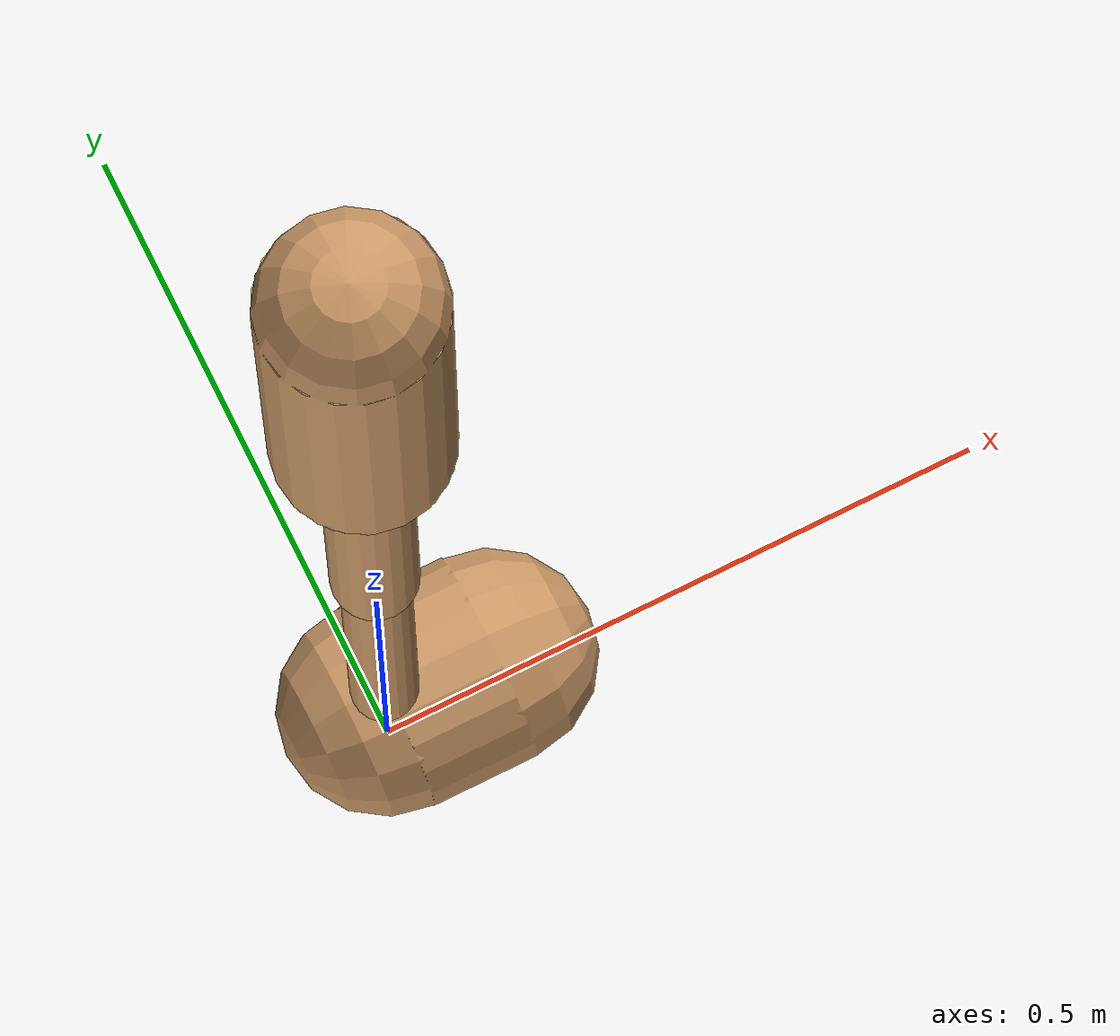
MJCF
<mujoco model="walker2d">
  <compiler angle="degree" coordinate="global" inertiafromgeom="true" />
  <default>
    <joint armature="0.01" damping=".1" limited="true" />
    <geom conaffinity="0" condim="3" contype="1" density="1000" friction="0.8 .1 .1" rgba="0.8 0.6 .4 1" />
  </default>
  <option integrator="RK4" timestep="0.002" />
  <worldbody>

    <body name="torso" pos="0 0 0.009165564257459742">
      <joint armature="0" axis="1 0 0" damping="0" limited="false" name="ignorex" pos="0 0 0" stiffness="0" type="slide" />
      <joint armature="0" axis="0 0 1" damping="0" limited="false" name="ignorez" pos="0 0 0" ref="1.25" stiffness="0" type="slide" />
      <joint armature="0" axis="0 1 0" damping="0" limited="false" name="ignorey" pos="0 0 0" stiffness="0" type="hinge" />
      <geom fromto="0 0 1.45 0 0 1.05" name="torso_geom" size="0.06495977941182636" type="capsule" />
      <body name="thigh">
        <joint axis="0 -1 0" name="thigh_joint" pos="0 0 1.05" range="-150 0" type="hinge" />
        <geom fromto="0.0 0.0 1.05 0.0 0.0 0.5956584169306769" name="thigh_geom" size="0.032831964078702085" type="capsule" />
        <body name="leg" pos="0.0 0.0 -0.004341583069323085">
          <joint axis="0 -1 0" name="leg_joint" pos="0 0 0.6" range="-150 0" type="hinge" />
          <geom fromto="0.0 0.0 0.6 0.0 0.0 0.0951760188118633" name="leg_geom" size="0.026265571262961664" type="capsule" />
          <body name="foot" pos="0.0 0.0 -0.004823981188136706">
            <joint axis="0 -1 0" name="foot_joint" pos="0 0 0.1" range="-45 45" type="hinge" />
            <geom fromto="0.0 0.0 0.1 0.08674805290622659 0.0 0.1" name="foot_geom" size="0.08430957351191243" type="capsule" />
          </body>
        </body>
      </body>

      <body name="thigh_left">
        <joint axis="0 -1 0" name="thigh_left_joint" pos="0 0 1.05" range="-150 0" type="hinge" />
        <geom fromto="0.0 0.0 1.05 0.0 0.0 0.5956584169306769" name="thigh_left_geom" rgba=".7 .3 .6 1" size="0.032831964078702085" type="capsule" />
        <body name="leg_left" pos="0.0 0.0 -0.004341583069323085">
          <joint axis="0 -1 0" name="leg_left_joint" pos="0 0 0.6" range="-150 0" type="hinge" />
          <geom fromto="0.0 0.0 0.6 0.0 0.0 0.0951760188118633" name="leg_left_geom" rgba=".7 .3 .6 1" size="0.026265571262961664" type="capsule" />
          <body name="foot_left" pos="0.0 0.0 -0.004823981188136706">
            <joint axis="0 -1 0" name="foot_left_joint" pos="0 0 0.1" range="-45 45" type="hinge" />
            <geom fromto="0.0 0.0 0.1 0.08674805290622659 0.0 0.1" name="foot_left_geom" rgba=".7 .3 .6 1" size="0.08430957351191243" type="capsule" />
          </body>
        </body>
      </body>
    </body>
  </worldbody>
  <actuator>

    <motor ctrllimited="true" ctrlrange="-1.0 1.0" gear="100" joint="thigh_joint" />
    <motor ctrllimited="true" ctrlrange="-1.0 1.0" gear="100" joint="leg_joint" />
    <motor ctrllimited="true" ctrlrange="-1.0 1.0" gear="100" joint="foot_joint" />
    <motor ctrllimited="true" ctrlrange="-1.0 1.0" gear="100" joint="thigh_left_joint" />
    <motor ctrllimited="true" ctrlrange="-1.0 1.0" gear="100" joint="leg_left_joint" />
    <motor ctrllimited="true" ctrlrange="-1.0 1.0" gear="100" joint="foot_left_joint" />

  </actuator>
</mujoco>
